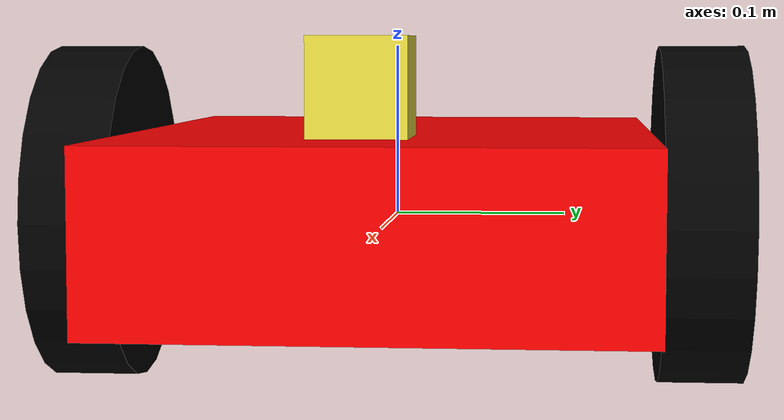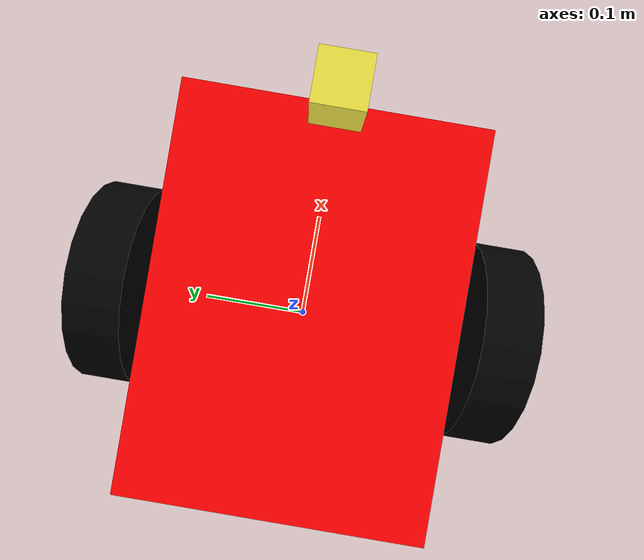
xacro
<?xml version="1.0"?>
<robot xmlns:xacro="http://www.ros.org/wiki/xacro" name="follower_bot">
  <material name="red"><color rgba="1 0 0 1"/></material>
  <material name="black"><color rgba="0 0 0 1"/></material>

  <link name="base_link">
    <visual><geometry><box size="0.4 0.3 0.1"/></geometry><material name="red"/></visual>
    <collision><geometry><box size="0.4 0.3 0.1"/></geometry></collision>
    <inertial><mass value="1.0"/><inertia ixx="0.01" ixy="0" ixz="0" iyy="0.01" iyz="0" izz="0.01"/></inertial>
  </link>

  <xacro:macro name="wheel" params="name y_offset">
    <link name="${name}">
      <visual><geometry><cylinder radius="0.1" length="0.05"/></geometry><material name="black"/></visual>
      <collision><geometry><cylinder radius="0.1" length="0.05"/></geometry></collision>
      <inertial><mass value="0.2"/><inertia ixx="0.0005" ixy="0" ixz="0" iyy="0.0005" iyz="0" izz="0.001"/></inertial>
    </link>
    <joint name="${name}_joint" type="continuous">
      <parent link="base_link"/><child link="${name}"/><origin xyz="0 ${y_offset} 0" rpy="-1.57 0 0"/><axis xyz="0 0 1"/>
    </joint>
  </xacro:macro>

  <xacro:wheel name="left_wheel" y_offset="0.18"/>
  <xacro:wheel name="right_wheel" y_offset="-0.18"/>

  <link name="camera_link"><visual><geometry><box size="0.05 0.05 0.05"/></geometry></visual></link>
  <joint name="camera_joint" type="fixed"><parent link="base_link"/><child link="camera_link"/><origin xyz="0.2 0 0.08" rpy="0 0 0"/></joint>

  <gazebo>
    <plugin filename="gz-sim-diff-drive-system" name="gz::sim::systems::DiffDrive">
      <left_joint>left_wheel_joint</left_joint><right_joint>right_wheel_joint</right_joint>
      <wheel_separation>0.36</wheel_separation><wheel_radius>0.1</wheel_radius>
      <topic>/cmd_vel</topic>
    </plugin>
    <plugin filename="gz-sim-sensors-system" name="gz::sim::systems::Sensors"><render_engine>ogre2</render_engine></plugin>
  </gazebo>
  <gazebo reference="camera_link"><sensor name="camera" type="camera"><camera><horizontal_fov>1.047</horizontal_fov><image><width>640</width><height>480</height></image></camera><always_on>1</always_on><update_rate>30</update_rate><topic>camera</topic></sensor></gazebo>
</robot>
